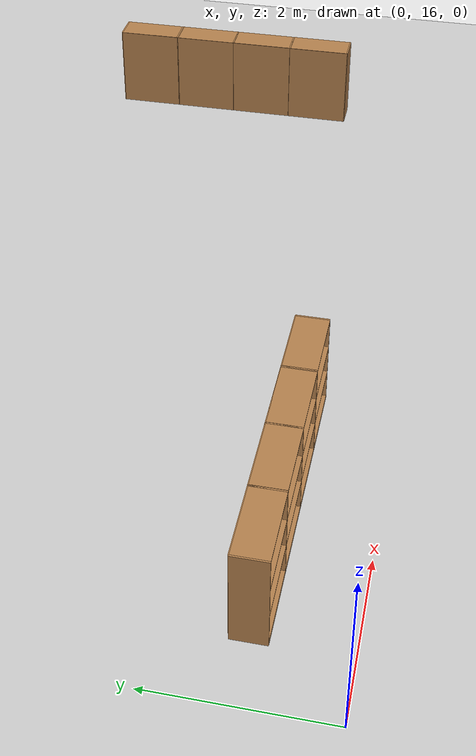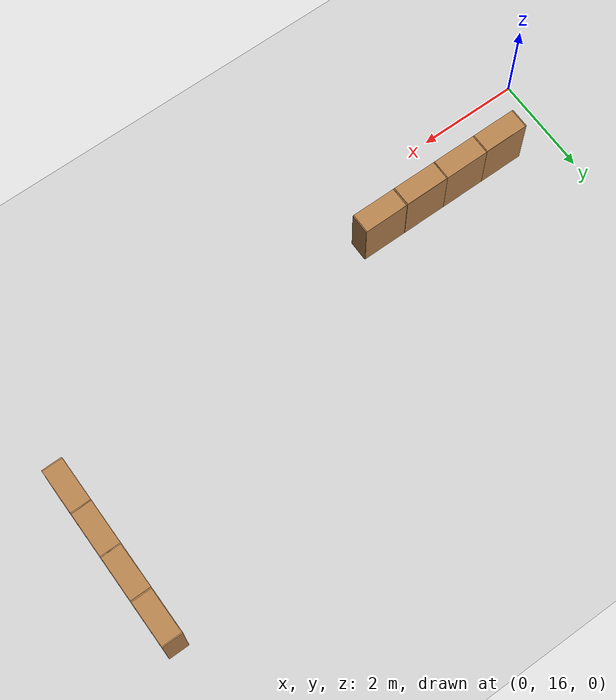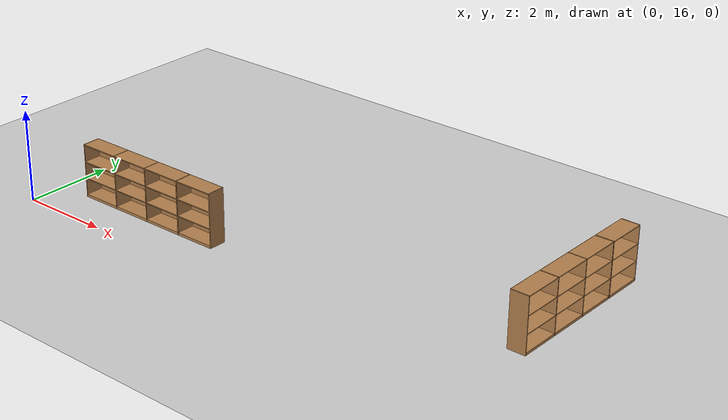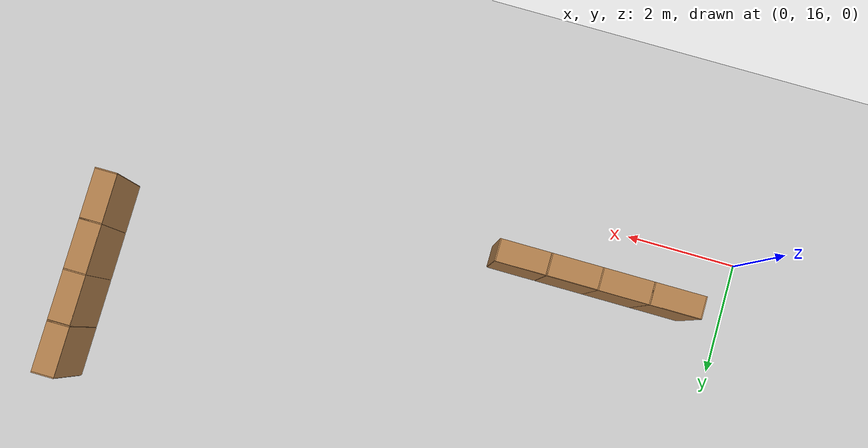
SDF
<sdf version="1.6">
 <world name="default">
  <model name="ground_plane">
   <static>1</static>
   <link name="link">
    <collision name="collision">
     <geometry><plane><normal>0 0 1</normal><size>100 100</size></plane></geometry>
     <surface><friction><ode><mu>100</mu><mu2>50</mu2></ode></friction></surface>
    </collision>
    <visual name="visual">
     <cast_shadows>0</cast_shadows>
     <geometry><plane><normal>0 0 1</normal><size>100 100</size></plane></geometry>
     <material>
      <script><uri>file://media/materials/scripts/gazebo.material</uri><name>Gazebo/Grey</name></script>
     </material>
    </visual>
   </link>
  </model>
  <model name="Bookself-4_clone_14_clone_1">
   <model name="Bookself-3">
    <model name="bookshelf_0">
     <static>1</static>
     <link name="link">
      <inertial><mass>1</mass></inertial>
      <collision name="back">
       <pose>0 0.005 0.6 0 -0 0</pose>
       <geometry><box><size>0.9 0.01 1.2</size></box></geometry>
      </collision>
      <visual name="visual1">
       <pose>0 0.005 0.6 0 -0 0</pose>
       <geometry><box><size>0.9 0.01 1.2</size></box></geometry>
       <material>
        <script><uri>file://media/materials/scripts/gazebo.material</uri><name>Gazebo/Wood</name></script>
       </material>
      </visual>
      <collision name="left_side">
       <pose>0.45 -0.195 0.6 0 -0 0</pose>
       <geometry><box><size>0.02 0.4 1.2</size></box></geometry>
      </collision>
      <visual name="visual2">
       <pose>0.45 -0.195 0.6 0 -0 0</pose>
       <geometry><box><size>0.02 0.4 1.2</size></box></geometry>
       <material>
        <script><uri>file://media/materials/scripts/gazebo.material</uri><name>Gazebo/Wood</name></script>
       </material>
      </visual>
      <collision name="right_side">
       <pose>-0.45 -0.195 0.6 0 -0 0</pose>
       <geometry><box><size>0.02 0.4 1.2</size></box></geometry>
      </collision>
      <visual name="visual3">
       <pose>-0.45 -0.195 0.6 0 -0 0</pose>
       <geometry><box><size>0.02 0.4 1.2</size></box></geometry>
       <material>
        <script><uri>file://media/materials/scripts/gazebo.material</uri><name>Gazebo/Wood</name></script>
       </material>
      </visual>
      <collision name="bottom">
       <pose>0 -0.195 0.03 0 -0 0</pose>
       <geometry><box><size>0.88 0.4 0.06</size></box></geometry>
      </collision>
      <visual name="visual4">
       <pose>0 -0.195 0.03 0 -0 0</pose>
       <geometry><box><size>0.88 0.4 0.06</size></box></geometry>
       <material>
        <script><uri>file://media/materials/scripts/gazebo.material</uri><name>Gazebo/Wood</name></script>
       </material>
      </visual>
      <collision name="top">
       <pose>0 -0.195 1.19 0 -0 0</pose>
       <geometry><box><size>0.88 0.4 0.02</size></box></geometry>
      </collision>
      <visual name="visual5">
       <pose>0 -0.195 1.19 0 -0 0</pose>
       <geometry><box><size>0.88 0.4 0.02</size></box></geometry>
       <material>
        <script><uri>file://media/materials/scripts/gazebo.material</uri><name>Gazebo/Wood</name></script>
       </material>
      </visual>
      <collision name="low_shelf">
       <pose>0 -0.195 0.43 0 -0 0</pose>
       <geometry><box><size>0.88 0.4 0.02</size></box></geometry>
      </collision>
      <visual name="visual6">
       <pose>0 -0.195 0.43 0 -0 0</pose>
       <geometry><box><size>0.88 0.4 0.02</size></box></geometry>
       <material>
        <script><uri>file://media/materials/scripts/gazebo.material</uri><name>Gazebo/Wood</name></script>
       </material>
      </visual>
      <collision name="high_shelf">
       <pose>0 -0.195 0.8 0 -0 0</pose>
       <geometry><box><size>0.88 0.4 0.02</size></box></geometry>
      </collision>
      <visual name="visual7">
       <pose>0 -0.195 0.8 0 -0 0</pose>
       <geometry><box><size>0.88 0.4 0.02</size></box></geometry>
       <material>
        <script><uri>file://media/materials/scripts/gazebo.material</uri><name>Gazebo/Wood</name></script>
       </material>
      </visual>
     </link>
     <pose>-0.903039 0 0 0 -0 0</pose>
    </model>
    <model name="bookshelf_1">
     <static>1</static>
     <link name="link">
      <inertial><mass>1</mass></inertial>
      <collision name="back">
       <pose>0 0.005 0.6 0 -0 0</pose>
       <geometry><box><size>0.9 0.01 1.2</size></box></geometry>
      </collision>
      <visual name="visual1">
       <pose>0 0.005 0.6 0 -0 0</pose>
       <geometry><box><size>0.9 0.01 1.2</size></box></geometry>
       <material>
        <script><uri>file://media/materials/scripts/gazebo.material</uri><name>Gazebo/Wood</name></script>
       </material>
      </visual>
      <collision name="left_side">
       <pose>0.45 -0.195 0.6 0 -0 0</pose>
       <geometry><box><size>0.02 0.4 1.2</size></box></geometry>
      </collision>
      <visual name="visual2">
       <pose>0.45 -0.195 0.6 0 -0 0</pose>
       <geometry><box><size>0.02 0.4 1.2</size></box></geometry>
       <material>
        <script><uri>file://media/materials/scripts/gazebo.material</uri><name>Gazebo/Wood</name></script>
       </material>
      </visual>
      <collision name="right_side">
       <pose>-0.45 -0.195 0.6 0 -0 0</pose>
       <geometry><box><size>0.02 0.4 1.2</size></box></geometry>
      </collision>
      <visual name="visual3">
       <pose>-0.45 -0.195 0.6 0 -0 0</pose>
       <geometry><box><size>0.02 0.4 1.2</size></box></geometry>
       <material>
        <script><uri>file://media/materials/scripts/gazebo.material</uri><name>Gazebo/Wood</name></script>
       </material>
      </visual>
      <collision name="bottom">
       <pose>0 -0.195 0.03 0 -0 0</pose>
       <geometry><box><size>0.88 0.4 0.06</size></box></geometry>
      </collision>
      <visual name="visual4">
       <pose>0 -0.195 0.03 0 -0 0</pose>
       <geometry><box><size>0.88 0.4 0.06</size></box></geometry>
       <material>
        <script><uri>file://media/materials/scripts/gazebo.material</uri><name>Gazebo/Wood</name></script>
       </material>
      </visual>
      <collision name="top">
       <pose>0 -0.195 1.19 0 -0 0</pose>
       <geometry><box><size>0.88 0.4 0.02</size></box></geometry>
      </collision>
      <visual name="visual5">
       <pose>0 -0.195 1.19 0 -0 0</pose>
       <geometry><box><size>0.88 0.4 0.02</size></box></geometry>
       <material>
        <script><uri>file://media/materials/scripts/gazebo.material</uri><name>Gazebo/Wood</name></script>
       </material>
      </visual>
      <collision name="low_shelf">
       <pose>0 -0.195 0.43 0 -0 0</pose>
       <geometry><box><size>0.88 0.4 0.02</size></box></geometry>
      </collision>
      <visual name="visual6">
       <pose>0 -0.195 0.43 0 -0 0</pose>
       <geometry><box><size>0.88 0.4 0.02</size></box></geometry>
       <material>
        <script><uri>file://media/materials/scripts/gazebo.material</uri><name>Gazebo/Wood</name></script>
       </material>
      </visual>
      <collision name="high_shelf">
       <pose>0 -0.195 0.8 0 -0 0</pose>
       <geometry><box><size>0.88 0.4 0.02</size></box></geometry>
      </collision>
      <visual name="visual7">
       <pose>0 -0.195 0.8 0 -0 0</pose>
       <geometry><box><size>0.88 0.4 0.02</size></box></geometry>
       <material>
        <script><uri>file://media/materials/scripts/gazebo.material</uri><name>Gazebo/Wood</name></script>
       </material>
      </visual>
     </link>
     <pose>0.000535 0 0 0 -0 0</pose>
    </model>
    <model name="bookshelf_1_clone">
     <static>1</static>
     <link name="link">
      <inertial><mass>1</mass></inertial>
      <collision name="back">
       <pose>0 0.005 0.6 0 -0 0</pose>
       <geometry><box><size>0.9 0.01 1.2</size></box></geometry>
      </collision>
      <visual name="visual1">
       <pose>0 0.005 0.6 0 -0 0</pose>
       <geometry><box><size>0.9 0.01 1.2</size></box></geometry>
       <material>
        <script><uri>file://media/materials/scripts/gazebo.material</uri><name>Gazebo/Wood</name></script>
       </material>
      </visual>
      <collision name="left_side">
       <pose>0.45 -0.195 0.6 0 -0 0</pose>
       <geometry><box><size>0.02 0.4 1.2</size></box></geometry>
      </collision>
      <visual name="visual2">
       <pose>0.45 -0.195 0.6 0 -0 0</pose>
       <geometry><box><size>0.02 0.4 1.2</size></box></geometry>
       <material>
        <script><uri>file://media/materials/scripts/gazebo.material</uri><name>Gazebo/Wood</name></script>
       </material>
      </visual>
      <collision name="right_side">
       <pose>-0.45 -0.195 0.6 0 -0 0</pose>
       <geometry><box><size>0.02 0.4 1.2</size></box></geometry>
      </collision>
      <visual name="visual3">
       <pose>-0.45 -0.195 0.6 0 -0 0</pose>
       <geometry><box><size>0.02 0.4 1.2</size></box></geometry>
       <material>
        <script><uri>file://media/materials/scripts/gazebo.material</uri><name>Gazebo/Wood</name></script>
       </material>
      </visual>
      <collision name="bottom">
       <pose>0 -0.195 0.03 0 -0 0</pose>
       <geometry><box><size>0.88 0.4 0.06</size></box></geometry>
      </collision>
      <visual name="visual4">
       <pose>0 -0.195 0.03 0 -0 0</pose>
       <geometry><box><size>0.88 0.4 0.06</size></box></geometry>
       <material>
        <script><uri>file://media/materials/scripts/gazebo.material</uri><name>Gazebo/Wood</name></script>
       </material>
      </visual>
      <collision name="top">
       <pose>0 -0.195 1.19 0 -0 0</pose>
       <geometry><box><size>0.88 0.4 0.02</size></box></geometry>
      </collision>
      <visual name="visual5">
       <pose>0 -0.195 1.19 0 -0 0</pose>
       <geometry><box><size>0.88 0.4 0.02</size></box></geometry>
       <material>
        <script><uri>file://media/materials/scripts/gazebo.material</uri><name>Gazebo/Wood</name></script>
       </material>
      </visual>
      <collision name="low_shelf">
       <pose>0 -0.195 0.43 0 -0 0</pose>
       <geometry><box><size>0.88 0.4 0.02</size></box></geometry>
      </collision>
      <visual name="visual6">
       <pose>0 -0.195 0.43 0 -0 0</pose>
       <geometry><box><size>0.88 0.4 0.02</size></box></geometry>
       <material>
        <script><uri>file://media/materials/scripts/gazebo.material</uri><name>Gazebo/Wood</name></script>
       </material>
      </visual>
      <collision name="high_shelf">
       <pose>0 -0.195 0.8 0 -0 0</pose>
       <geometry><box><size>0.88 0.4 0.02</size></box></geometry>
      </collision>
      <visual name="visual7">
       <pose>0 -0.195 0.8 0 -0 0</pose>
       <geometry><box><size>0.88 0.4 0.02</size></box></geometry>
       <material>
        <script><uri>file://media/materials/scripts/gazebo.material</uri><name>Gazebo/Wood</name></script>
       </material>
      </visual>
     </link>
     <pose>0.902502 0 0 0 -0 0</pose>
    </model>
    <static>1</static>
    <pose>-0.906894 3e-05 0 0 -0 0</pose>
   </model>
   <model name="bookshelf">
    <static>1</static>
    <link name="link">
     <inertial><mass>1</mass></inertial>
     <collision name="back">
      <pose>0 0.005 0.6 0 -0 0</pose>
      <geometry><box><size>0.9 0.01 1.2</size></box></geometry>
     </collision>
     <visual name="visual1">
      <pose>0 0.005 0.6 0 -0 0</pose>
      <geometry><box><size>0.9 0.01 1.2</size></box></geometry>
      <material>
       <script><uri>file://media/materials/scripts/gazebo.material</uri><name>Gazebo/Wood</name></script>
      </material>
     </visual>
     <collision name="left_side">
      <pose>0.45 -0.195 0.6 0 -0 0</pose>
      <geometry><box><size>0.02 0.4 1.2</size></box></geometry>
     </collision>
     <visual name="visual2">
      <pose>0.45 -0.195 0.6 0 -0 0</pose>
      <geometry><box><size>0.02 0.4 1.2</size></box></geometry>
      <material>
       <script><uri>file://media/materials/scripts/gazebo.material</uri><name>Gazebo/Wood</name></script>
      </material>
     </visual>
     <collision name="right_side">
      <pose>-0.45 -0.195 0.6 0 -0 0</pose>
      <geometry><box><size>0.02 0.4 1.2</size></box></geometry>
     </collision>
     <visual name="visual3">
      <pose>-0.45 -0.195 0.6 0 -0 0</pose>
      <geometry><box><size>0.02 0.4 1.2</size></box></geometry>
      <material>
       <script><uri>file://media/materials/scripts/gazebo.material</uri><name>Gazebo/Wood</name></script>
      </material>
     </visual>
     <collision name="bottom">
      <pose>0 -0.195 0.03 0 -0 0</pose>
      <geometry><box><size>0.88 0.4 0.06</size></box></geometry>
     </collision>
     <visual name="visual4">
      <pose>0 -0.195 0.03 0 -0 0</pose>
      <geometry><box><size>0.88 0.4 0.06</size></box></geometry>
      <material>
       <script><uri>file://media/materials/scripts/gazebo.material</uri><name>Gazebo/Wood</name></script>
      </material>
     </visual>
     <collision name="top">
      <pose>0 -0.195 1.19 0 -0 0</pose>
      <geometry><box><size>0.88 0.4 0.02</size></box></geometry>
     </collision>
     <visual name="visual5">
      <pose>0 -0.195 1.19 0 -0 0</pose>
      <geometry><box><size>0.88 0.4 0.02</size></box></geometry>
      <material>
       <script><uri>file://media/materials/scripts/gazebo.material</uri><name>Gazebo/Wood</name></script>
      </material>
     </visual>
     <collision name="low_shelf">
      <pose>0 -0.195 0.43 0 -0 0</pose>
      <geometry><box><size>0.88 0.4 0.02</size></box></geometry>
     </collision>
     <visual name="visual6">
      <pose>0 -0.195 0.43 0 -0 0</pose>
      <geometry><box><size>0.88 0.4 0.02</size></box></geometry>
      <material>
       <script><uri>file://media/materials/scripts/gazebo.material</uri><name>Gazebo/Wood</name></script>
      </material>
     </visual>
     <collision name="high_shelf">
      <pose>0 -0.195 0.8 0 -0 0</pose>
      <geometry><box><size>0.88 0.4 0.02</size></box></geometry>
     </collision>
     <visual name="visual7">
      <pose>0 -0.195 0.8 0 -0 0</pose>
      <geometry><box><size>0.88 0.4 0.02</size></box></geometry>
      <material>
       <script><uri>file://media/materials/scripts/gazebo.material</uri><name>Gazebo/Wood</name></script>
      </material>
     </visual>
    </link>
    <pose>0.906808 3e-05 0 0 -0 0</pose>
   </model>
   <static>0</static>
   <pose>10.9754 19.8438 0 0 -0 1.5707</pose>
  </model>
  <model name="Bookself-4_clone_0_clone_1">
   <model name="Bookself-3">
    <model name="bookshelf_0">
     <static>1</static>
     <link name="link">
      <inertial><mass>1</mass></inertial>
      <collision name="back">
       <pose>0 0.005 0.6 0 -0 0</pose>
       <geometry><box><size>0.9 0.01 1.2</size></box></geometry>
      </collision>
      <visual name="visual1">
       <pose>0 0.005 0.6 0 -0 0</pose>
       <geometry><box><size>0.9 0.01 1.2</size></box></geometry>
       <material>
        <script><uri>file://media/materials/scripts/gazebo.material</uri><name>Gazebo/Wood</name></script>
       </material>
      </visual>
      <collision name="left_side">
       <pose>0.45 -0.195 0.6 0 -0 0</pose>
       <geometry><box><size>0.02 0.4 1.2</size></box></geometry>
      </collision>
      <visual name="visual2">
       <pose>0.45 -0.195 0.6 0 -0 0</pose>
       <geometry><box><size>0.02 0.4 1.2</size></box></geometry>
       <material>
        <script><uri>file://media/materials/scripts/gazebo.material</uri><name>Gazebo/Wood</name></script>
       </material>
      </visual>
      <collision name="right_side">
       <pose>-0.45 -0.195 0.6 0 -0 0</pose>
       <geometry><box><size>0.02 0.4 1.2</size></box></geometry>
      </collision>
      <visual name="visual3">
       <pose>-0.45 -0.195 0.6 0 -0 0</pose>
       <geometry><box><size>0.02 0.4 1.2</size></box></geometry>
       <material>
        <script><uri>file://media/materials/scripts/gazebo.material</uri><name>Gazebo/Wood</name></script>
       </material>
      </visual>
      <collision name="bottom">
       <pose>0 -0.195 0.03 0 -0 0</pose>
       <geometry><box><size>0.88 0.4 0.06</size></box></geometry>
      </collision>
      <visual name="visual4">
       <pose>0 -0.195 0.03 0 -0 0</pose>
       <geometry><box><size>0.88 0.4 0.06</size></box></geometry>
       <material>
        <script><uri>file://media/materials/scripts/gazebo.material</uri><name>Gazebo/Wood</name></script>
       </material>
      </visual>
      <collision name="top">
       <pose>0 -0.195 1.19 0 -0 0</pose>
       <geometry><box><size>0.88 0.4 0.02</size></box></geometry>
      </collision>
      <visual name="visual5">
       <pose>0 -0.195 1.19 0 -0 0</pose>
       <geometry><box><size>0.88 0.4 0.02</size></box></geometry>
       <material>
        <script><uri>file://media/materials/scripts/gazebo.material</uri><name>Gazebo/Wood</name></script>
       </material>
      </visual>
      <collision name="low_shelf">
       <pose>0 -0.195 0.43 0 -0 0</pose>
       <geometry><box><size>0.88 0.4 0.02</size></box></geometry>
      </collision>
      <visual name="visual6">
       <pose>0 -0.195 0.43 0 -0 0</pose>
       <geometry><box><size>0.88 0.4 0.02</size></box></geometry>
       <material>
        <script><uri>file://media/materials/scripts/gazebo.material</uri><name>Gazebo/Wood</name></script>
       </material>
      </visual>
      <collision name="high_shelf">
       <pose>0 -0.195 0.8 0 -0 0</pose>
       <geometry><box><size>0.88 0.4 0.02</size></box></geometry>
      </collision>
      <visual name="visual7">
       <pose>0 -0.195 0.8 0 -0 0</pose>
       <geometry><box><size>0.88 0.4 0.02</size></box></geometry>
       <material>
        <script><uri>file://media/materials/scripts/gazebo.material</uri><name>Gazebo/Wood</name></script>
       </material>
      </visual>
     </link>
     <pose>-0.903039 0 0 0 -0 0</pose>
    </model>
    <model name="bookshelf_1">
     <static>1</static>
     <link name="link">
      <inertial><mass>1</mass></inertial>
      <collision name="back">
       <pose>0 0.005 0.6 0 -0 0</pose>
       <geometry><box><size>0.9 0.01 1.2</size></box></geometry>
      </collision>
      <visual name="visual1">
       <pose>0 0.005 0.6 0 -0 0</pose>
       <geometry><box><size>0.9 0.01 1.2</size></box></geometry>
       <material>
        <script><uri>file://media/materials/scripts/gazebo.material</uri><name>Gazebo/Wood</name></script>
       </material>
      </visual>
      <collision name="left_side">
       <pose>0.45 -0.195 0.6 0 -0 0</pose>
       <geometry><box><size>0.02 0.4 1.2</size></box></geometry>
      </collision>
      <visual name="visual2">
       <pose>0.45 -0.195 0.6 0 -0 0</pose>
       <geometry><box><size>0.02 0.4 1.2</size></box></geometry>
       <material>
        <script><uri>file://media/materials/scripts/gazebo.material</uri><name>Gazebo/Wood</name></script>
       </material>
      </visual>
      <collision name="right_side">
       <pose>-0.45 -0.195 0.6 0 -0 0</pose>
       <geometry><box><size>0.02 0.4 1.2</size></box></geometry>
      </collision>
      <visual name="visual3">
       <pose>-0.45 -0.195 0.6 0 -0 0</pose>
       <geometry><box><size>0.02 0.4 1.2</size></box></geometry>
       <material>
        <script><uri>file://media/materials/scripts/gazebo.material</uri><name>Gazebo/Wood</name></script>
       </material>
      </visual>
      <collision name="bottom">
       <pose>0 -0.195 0.03 0 -0 0</pose>
       <geometry><box><size>0.88 0.4 0.06</size></box></geometry>
      </collision>
      <visual name="visual4">
       <pose>0 -0.195 0.03 0 -0 0</pose>
       <geometry><box><size>0.88 0.4 0.06</size></box></geometry>
       <material>
        <script><uri>file://media/materials/scripts/gazebo.material</uri><name>Gazebo/Wood</name></script>
       </material>
      </visual>
      <collision name="top">
       <pose>0 -0.195 1.19 0 -0 0</pose>
       <geometry><box><size>0.88 0.4 0.02</size></box></geometry>
      </collision>
      <visual name="visual5">
       <pose>0 -0.195 1.19 0 -0 0</pose>
       <geometry><box><size>0.88 0.4 0.02</size></box></geometry>
       <material>
        <script><uri>file://media/materials/scripts/gazebo.material</uri><name>Gazebo/Wood</name></script>
       </material>
      </visual>
      <collision name="low_shelf">
       <pose>0 -0.195 0.43 0 -0 0</pose>
       <geometry><box><size>0.88 0.4 0.02</size></box></geometry>
      </collision>
      <visual name="visual6">
       <pose>0 -0.195 0.43 0 -0 0</pose>
       <geometry><box><size>0.88 0.4 0.02</size></box></geometry>
       <material>
        <script><uri>file://media/materials/scripts/gazebo.material</uri><name>Gazebo/Wood</name></script>
       </material>
      </visual>
      <collision name="high_shelf">
       <pose>0 -0.195 0.8 0 -0 0</pose>
       <geometry><box><size>0.88 0.4 0.02</size></box></geometry>
      </collision>
      <visual name="visual7">
       <pose>0 -0.195 0.8 0 -0 0</pose>
       <geometry><box><size>0.88 0.4 0.02</size></box></geometry>
       <material>
        <script><uri>file://media/materials/scripts/gazebo.material</uri><name>Gazebo/Wood</name></script>
       </material>
      </visual>
     </link>
     <pose>0.000535 0 0 0 -0 0</pose>
    </model>
    <model name="bookshelf_1_clone">
     <static>1</static>
     <link name="link">
      <inertial><mass>1</mass></inertial>
      <collision name="back">
       <pose>0 0.005 0.6 0 -0 0</pose>
       <geometry><box><size>0.9 0.01 1.2</size></box></geometry>
      </collision>
      <visual name="visual1">
       <pose>0 0.005 0.6 0 -0 0</pose>
       <geometry><box><size>0.9 0.01 1.2</size></box></geometry>
       <material>
        <script><uri>file://media/materials/scripts/gazebo.material</uri><name>Gazebo/Wood</name></script>
       </material>
      </visual>
      <collision name="left_side">
       <pose>0.45 -0.195 0.6 0 -0 0</pose>
       <geometry><box><size>0.02 0.4 1.2</size></box></geometry>
      </collision>
      <visual name="visual2">
       <pose>0.45 -0.195 0.6 0 -0 0</pose>
       <geometry><box><size>0.02 0.4 1.2</size></box></geometry>
       <material>
        <script><uri>file://media/materials/scripts/gazebo.material</uri><name>Gazebo/Wood</name></script>
       </material>
      </visual>
      <collision name="right_side">
       <pose>-0.45 -0.195 0.6 0 -0 0</pose>
       <geometry><box><size>0.02 0.4 1.2</size></box></geometry>
      </collision>
      <visual name="visual3">
       <pose>-0.45 -0.195 0.6 0 -0 0</pose>
       <geometry><box><size>0.02 0.4 1.2</size></box></geometry>
       <material>
        <script><uri>file://media/materials/scripts/gazebo.material</uri><name>Gazebo/Wood</name></script>
       </material>
      </visual>
      <collision name="bottom">
       <pose>0 -0.195 0.03 0 -0 0</pose>
       <geometry><box><size>0.88 0.4 0.06</size></box></geometry>
      </collision>
      <visual name="visual4">
       <pose>0 -0.195 0.03 0 -0 0</pose>
       <geometry><box><size>0.88 0.4 0.06</size></box></geometry>
       <material>
        <script><uri>file://media/materials/scripts/gazebo.material</uri><name>Gazebo/Wood</name></script>
       </material>
      </visual>
      <collision name="top">
       <pose>0 -0.195 1.19 0 -0 0</pose>
       <geometry><box><size>0.88 0.4 0.02</size></box></geometry>
      </collision>
      <visual name="visual5">
       <pose>0 -0.195 1.19 0 -0 0</pose>
       <geometry><box><size>0.88 0.4 0.02</size></box></geometry>
       <material>
        <script><uri>file://media/materials/scripts/gazebo.material</uri><name>Gazebo/Wood</name></script>
       </material>
      </visual>
      <collision name="low_shelf">
       <pose>0 -0.195 0.43 0 -0 0</pose>
       <geometry><box><size>0.88 0.4 0.02</size></box></geometry>
      </collision>
      <visual name="visual6">
       <pose>0 -0.195 0.43 0 -0 0</pose>
       <geometry><box><size>0.88 0.4 0.02</size></box></geometry>
       <material>
        <script><uri>file://media/materials/scripts/gazebo.material</uri><name>Gazebo/Wood</name></script>
       </material>
      </visual>
      <collision name="high_shelf">
       <pose>0 -0.195 0.8 0 -0 0</pose>
       <geometry><box><size>0.88 0.4 0.02</size></box></geometry>
      </collision>
      <visual name="visual7">
       <pose>0 -0.195 0.8 0 -0 0</pose>
       <geometry><box><size>0.88 0.4 0.02</size></box></geometry>
       <material>
        <script><uri>file://media/materials/scripts/gazebo.material</uri><name>Gazebo/Wood</name></script>
       </material>
      </visual>
     </link>
     <pose>0.902502 0 0 0 -0 0</pose>
    </model>
    <static>1</static>
    <pose>-0.906894 3e-05 0 0 -0 0</pose>
   </model>
   <model name="bookshelf">
    <static>1</static>
    <link name="link">
     <inertial><mass>1</mass></inertial>
     <collision name="back">
      <pose>0 0.005 0.6 0 -0 0</pose>
      <geometry><box><size>0.9 0.01 1.2</size></box></geometry>
     </collision>
     <visual name="visual1">
      <pose>0 0.005 0.6 0 -0 0</pose>
      <geometry><box><size>0.9 0.01 1.2</size></box></geometry>
      <material>
       <script><uri>file://media/materials/scripts/gazebo.material</uri><name>Gazebo/Wood</name></script>
      </material>
     </visual>
     <collision name="left_side">
      <pose>0.45 -0.195 0.6 0 -0 0</pose>
      <geometry><box><size>0.02 0.4 1.2</size></box></geometry>
     </collision>
     <visual name="visual2">
      <pose>0.45 -0.195 0.6 0 -0 0</pose>
      <geometry><box><size>0.02 0.4 1.2</size></box></geometry>
      <material>
       <script><uri>file://media/materials/scripts/gazebo.material</uri><name>Gazebo/Wood</name></script>
      </material>
     </visual>
     <collision name="right_side">
      <pose>-0.45 -0.195 0.6 0 -0 0</pose>
      <geometry><box><size>0.02 0.4 1.2</size></box></geometry>
     </collision>
     <visual name="visual3">
      <pose>-0.45 -0.195 0.6 0 -0 0</pose>
      <geometry><box><size>0.02 0.4 1.2</size></box></geometry>
      <material>
       <script><uri>file://media/materials/scripts/gazebo.material</uri><name>Gazebo/Wood</name></script>
      </material>
     </visual>
     <collision name="bottom">
      <pose>0 -0.195 0.03 0 -0 0</pose>
      <geometry><box><size>0.88 0.4 0.06</size></box></geometry>
     </collision>
     <visual name="visual4">
      <pose>0 -0.195 0.03 0 -0 0</pose>
      <geometry><box><size>0.88 0.4 0.06</size></box></geometry>
      <material>
       <script><uri>file://media/materials/scripts/gazebo.material</uri><name>Gazebo/Wood</name></script>
      </material>
     </visual>
     <collision name="top">
      <pose>0 -0.195 1.19 0 -0 0</pose>
      <geometry><box><size>0.88 0.4 0.02</size></box></geometry>
     </collision>
     <visual name="visual5">
      <pose>0 -0.195 1.19 0 -0 0</pose>
      <geometry><box><size>0.88 0.4 0.02</size></box></geometry>
      <material>
       <script><uri>file://media/materials/scripts/gazebo.material</uri><name>Gazebo/Wood</name></script>
      </material>
     </visual>
     <collision name="low_shelf">
      <pose>0 -0.195 0.43 0 -0 0</pose>
      <geometry><box><size>0.88 0.4 0.02</size></box></geometry>
     </collision>
     <visual name="visual6">
      <pose>0 -0.195 0.43 0 -0 0</pose>
      <geometry><box><size>0.88 0.4 0.02</size></box></geometry>
      <material>
       <script><uri>file://media/materials/scripts/gazebo.material</uri><name>Gazebo/Wood</name></script>
      </material>
     </visual>
     <collision name="high_shelf">
      <pose>0 -0.195 0.8 0 -0 0</pose>
      <geometry><box><size>0.88 0.4 0.02</size></box></geometry>
     </collision>
     <visual name="visual7">
      <pose>0 -0.195 0.8 0 -0 0</pose>
      <geometry><box><size>0.88 0.4 0.02</size></box></geometry>
      <material>
       <script><uri>file://media/materials/scripts/gazebo.material</uri><name>Gazebo/Wood</name></script>
      </material>
     </visual>
    </link>
    <pose>0.906808 3e-05 0 0 -0 0</pose>
   </model>
   <static>0</static>
   <pose>3.00632 17.2483 0 0 -0 0</pose>
  </model>
 </world>
</sdf>
